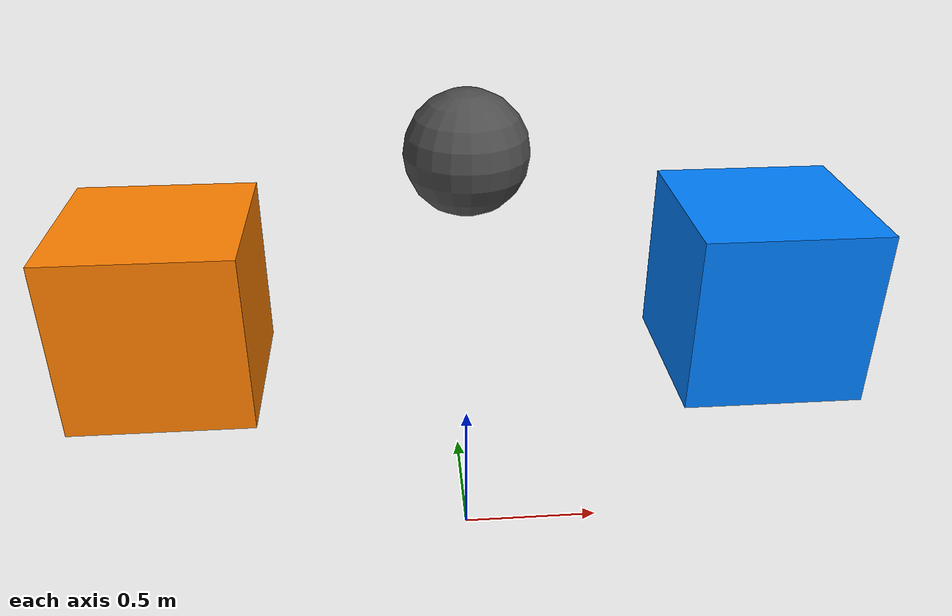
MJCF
<mujoco>
  <option gravity="0 0 -9.81"/>
  <worldbody>
    <light diffuse="0.5 0.5 0.5" pos="0 0 5" dir="0 0 -1"/>
    <body name="ground_plane" pos="0 0 -10">
      <geom type="plane" size="50 50 0.1" rgba="0.9 0.9 0.9 1" friction="1 1 1"/>
    </body>
    <body name="pulley_support" pos="0 0 1.5">
      <geom type="sphere" size="0.2" rgba="0.3 0.3 0.3 1"/>
    </body>
    <body name="block_heavy" pos="-1 0 1">
      <geom type="box" size="0.3 0.3 0.3" mass="4" rgba="1 0.5 0 1"/>
      <joint type="free"/>
    </body>
    <body name="block_light" pos="1 0 1">
      <geom type="box" size="0.3 0.3 0.3" mass="2" rgba="0 0.5 1 1"/>
      <joint type="free"/>
    </body>
  </worldbody>
</mujoco>
